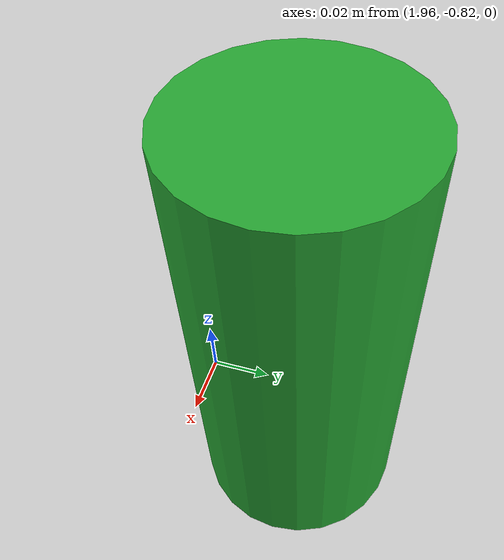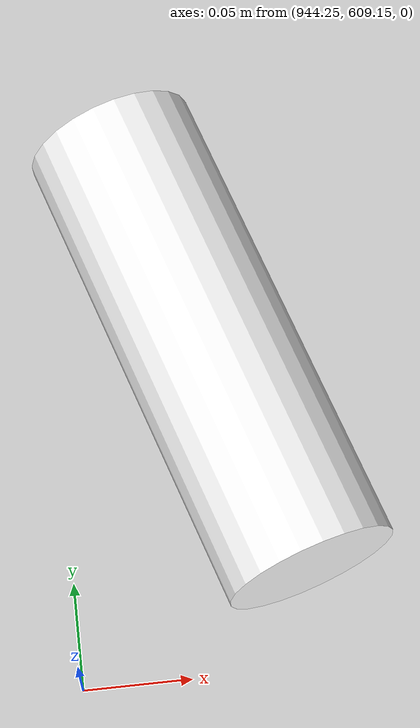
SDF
<sdf version="1.7">
 <world name="default">
  <light name="sun" type="directional">
   <pose>0 0 10 0 -0 0</pose>
   <diffuse>0.8 0.8 0.8 1</diffuse>
   <specular>0.1 0.1 0.1 1</specular>
   <attenuation>
    <range>1000</range>
    <constant>0.9</constant>
    <linear>0.01</linear>
    <quadratic>0.001</quadratic>
   </attenuation>
   <direction>-0.5 0.5 -1</direction>
   <spot><inner_angle>0</inner_angle><outer_angle>0</outer_angle><falloff>0</falloff></spot>
  </light>
  <model name="ground_plane">
   <static>1</static>
   <link name="link">
    <collision name="collision">
     <geometry><plane><normal>0 0 1</normal><size>100 100</size></plane></geometry>
     <surface><friction><ode><mu>100</mu><mu2>50</mu2></ode></friction></surface>
    </collision>
    <visual name="visual">
     <cast_shadows>0</cast_shadows>
     <geometry><plane><normal>0 0 1</normal><size>100 100</size></plane></geometry>
     <material>
      <script><uri>file://media/materials/scripts/gazebo.material</uri><name>Gazebo/Grey</name></script>
     </material>
    </visual>
   </link>
  </model>
  <gravity>0 0 -9.8</gravity>
  <magnetic_field>6e-06 2.3e-05 -4.2e-05</magnetic_field>
  <atmosphere type="adiabatic"/>
  <physics name="default_physics" default="0" type="ode">
   <max_step_size>0.001</max_step_size>
   <real_time_factor>1</real_time_factor>
   <real_time_update_rate>1000</real_time_update_rate>
  </physics>
  <scene><ambient>0.4 0.4 0.4 1</ambient><background>0.7 0.7 0.7 1</background><shadows>1</shadows></scene>
  <spherical_coordinates>
   <surface_model>EARTH_WGS84</surface_model>
   <latitude_deg>0</latitude_deg>
   <longitude_deg>0</longitude_deg>
   <elevation>0</elevation>
   <heading_deg>0</heading_deg>
  </spherical_coordinates>
  <audio><device>default</device></audio>
  <light name="user_directional_light_0" type="directional">
   <pose>45.8584 39.5951 1 0 -0 0</pose>
   <diffuse>0.5 0.5 0.5 1</diffuse>
   <specular>0.1 0.1 0.1 1</specular>
   <direction>0.1 0.1 -0.9</direction>
   <attenuation>
    <range>20</range>
    <constant>0.5</constant>
    <linear>0.01</linear>
    <quadratic>0.001</quadratic>
   </attenuation>
   <spot><inner_angle>0</inner_angle><outer_angle>0</outer_angle><falloff>0</falloff></spot>
  </light>
  <light name="user_directional_light_1" type="directional">
   <pose>38.4575 -41.9597 1 0 -0 0</pose>
   <diffuse>0.5 0.5 0.5 1</diffuse>
   <specular>0.1 0.1 0.1 1</specular>
   <direction>0.1 0.1 -0.9</direction>
   <attenuation>
    <range>20</range>
    <constant>0.5</constant>
    <linear>0.01</linear>
    <quadratic>0.001</quadratic>
   </attenuation>
   <spot><inner_angle>0</inner_angle><outer_angle>0</outer_angle><falloff>0</falloff></spot>
  </light>
  <light name="user_directional_light_2" type="directional">
   <pose>-12.7105 -27.0796 1 0 -0 0</pose>
   <diffuse>0.5 0.5 0.5 1</diffuse>
   <specular>0.1 0.1 0.1 1</specular>
   <direction>0.1 0.1 -0.9</direction>
   <attenuation>
    <range>20</range>
    <constant>0.5</constant>
    <linear>0.01</linear>
    <quadratic>0.001</quadratic>
   </attenuation>
   <spot><inner_angle>0</inner_angle><outer_angle>0</outer_angle><falloff>0</falloff></spot>
  </light>
  <light name="user_directional_light_3" type="directional">
   <pose>-14.2214 14.882 1 0 -0 0</pose>
   <diffuse>0.5 0.5 0.5 1</diffuse>
   <specular>0.1 0.1 0.1 1</specular>
   <direction>0.1 0.1 -0.9</direction>
   <attenuation>
    <range>20</range>
    <constant>0.5</constant>
    <linear>0.01</linear>
    <quadratic>0.001</quadratic>
   </attenuation>
   <spot><inner_angle>0</inner_angle><outer_angle>0</outer_angle><falloff>0</falloff></spot>
  </light>
  <light name="user_directional_light_4" type="directional">
   <pose>13.001 10.7496 1 0 -0 0</pose>
   <diffuse>0.5 0.5 0.5 1</diffuse>
   <specular>0.1 0.1 0.1 1</specular>
   <direction>0.1 0.1 -0.9</direction>
   <attenuation>
    <range>20</range>
    <constant>0.5</constant>
    <linear>0.01</linear>
    <quadratic>0.001</quadratic>
   </attenuation>
   <spot><inner_angle>0</inner_angle><outer_angle>0</outer_angle><falloff>0</falloff></spot>
  </light>
  <light name="user_directional_light_5" type="directional">
   <pose>15.4043 -13.9342 1 0 -0 0</pose>
   <diffuse>0.5 0.5 0.5 1</diffuse>
   <specular>0.1 0.1 0.1 1</specular>
   <direction>0.1 0.1 -0.9</direction>
   <attenuation>
    <range>20</range>
    <constant>0.5</constant>
    <linear>0.01</linear>
    <quadratic>0.001</quadratic>
   </attenuation>
   <spot><inner_angle>0</inner_angle><outer_angle>0</outer_angle><falloff>0</falloff></spot>
  </light>
  <model name="beer">
   <link name="link">
    <pose>0 -0 0.115 0 -0 0</pose>
    <inertial>
     <mass>0.01</mass>
     <inertia>
      <ixx>4.808e-05</ixx>
      <ixy>0</ixy>
      <ixz>0</ixz>
      <iyy>4.808e-05</iyy>
      <iyz>0</iyz>
      <izz>8e-06</izz>
     </inertia>
    </inertial>
    <visual name="visual">
     <geometry><cylinder><radius>0.04</radius><length>0.23</length></cylinder></geometry>
     <material>
      <script>
       <uri>model://beer/materials/scripts</uri>
       <uri>model://beer/materials/textures</uri>
       <name>Beer/Diffuse</name>
      </script>
      <shader type="pixel"><normal_map>__default__</normal_map></shader>
      <ambient>1 1 1 1</ambient>
      <diffuse>1 1 1 1</diffuse>
      <specular>0 0 0 1</specular>
      <emissive>0 0 0 1</emissive>
     </material>
    </visual>
    <collision name="collision">
     <geometry><cylinder><radius>0.04</radius><length>0.23</length></cylinder></geometry>
     <surface>
      <friction>
       <ode><mu>10</mu><mu2>10</mu2><fdir1>0 0 0</fdir1><slip1>0</slip1><slip2>0</slip2></ode>
       <torsional>
        <coefficient>1</coefficient>
        <patch_radius>0</patch_radius>
        <surface_radius>0</surface_radius>
        <use_patch_radius>1</use_patch_radius>
        <ode><slip>0</slip></ode>
       </torsional>
      </friction>
      <bounce><restitution_coefficient>0</restitution_coefficient><threshold>1e+06</threshold></bounce>
      <contact>
       <collide_without_contact>0</collide_without_contact>
       <collide_without_contact_bitmask>1</collide_without_contact_bitmask>
       <collide_bitmask>1</collide_bitmask>
       <ode>
        <soft_cfm>0</soft_cfm>
        <soft_erp>0.2</soft_erp>
        <kp>1e+13</kp>
        <kd>9.92</kd>
        <max_vel>0.01</max_vel>
        <min_depth>0</min_depth>
       </ode>
       <bullet>
        <split_impulse>1</split_impulse>
        <split_impulse_penetration_threshold>-0.01</split_impulse_penetration_threshold>
        <soft_cfm>0</soft_cfm>
        <soft_erp>0.2</soft_erp>
        <kp>1e+13</kp>
        <kd>9.92</kd>
       </bullet>
      </contact>
     </surface>
    </collision>
   </link>
   <static>0</static>
   <pose>944.287 609.405 0.04 1.5709 1.13624 0.311368</pose>
  </model>
  <plugin name="gazebo_link_attacher" filename="libgazebo_link_attacher.so"/>
  <model name="a_green_object">
   <link name="link">
    <inertial>
     <mass>0.1</mass>
     <inertia>
      <ixx>0.0145833</ixx>
      <ixy>0</ixy>
      <ixz>0</ixz>
      <iyy>0.0145833</iyy>
      <iyz>0</iyz>
      <izz>0.0125</izz>
     </inertia>
    </inertial>
    <visual name="visual">
     <geometry><cylinder><radius>0.03</radius><length>0.13</length></cylinder></geometry>
     <material>
      <script><name>Gazebo/Green</name><uri>file://media/materials/scripts/gazebo.material</uri></script>
      <shader type="pixel"><normal_map>__default__</normal_map></shader>
      <ambient>0 1 0 1</ambient>
      <diffuse>0 1 0 1</diffuse>
      <specular>0.1 0.1 0.1 1</specular>
      <emissive>0 0 0 1</emissive>
     </material>
    </visual>
    <collision name="collision">
     <geometry><cylinder><radius>0.03</radius><length>0.13</length></cylinder></geometry>
     <surface>
      <friction>
       <ode><mu>10</mu><mu2>10</mu2><fdir1>0 0 0</fdir1><slip1>0</slip1><slip2>0</slip2></ode>
       <torsional>
        <coefficient>1</coefficient>
        <patch_radius>0</patch_radius>
        <surface_radius>0</surface_radius>
        <use_patch_radius>1</use_patch_radius>
        <ode><slip>0</slip></ode>
       </torsional>
      </friction>
      <bounce><restitution_coefficient>0</restitution_coefficient><threshold>1e+06</threshold></bounce>
      <contact>
       <collide_without_contact>0</collide_without_contact>
       <collide_without_contact_bitmask>1</collide_without_contact_bitmask>
       <collide_bitmask>1</collide_bitmask>
       <ode>
        <soft_cfm>0</soft_cfm>
        <soft_erp>0.2</soft_erp>
        <kp>1e+13</kp>
        <kd>10</kd>
        <max_vel>0.01</max_vel>
        <min_depth>0</min_depth>
       </ode>
       <bullet>
        <split_impulse>1</split_impulse>
        <split_impulse_penetration_threshold>-0.01</split_impulse_penetration_threshold>
        <soft_cfm>0</soft_cfm>
        <soft_erp>0.2</soft_erp>
        <kp>1e+13</kp>
        <kd>10</kd>
       </bullet>
      </contact>
     </surface>
    </collision>
   </link>
   <static>0</static>
   <pose>1.98389 -0.78072 0.064991 0 -1e-06 1e-06</pose>
  </model>
  <plugin name="gazebo_runtime_mu" filename="libgazebo_runtime_mu.so"/>
 </world>
</sdf>
